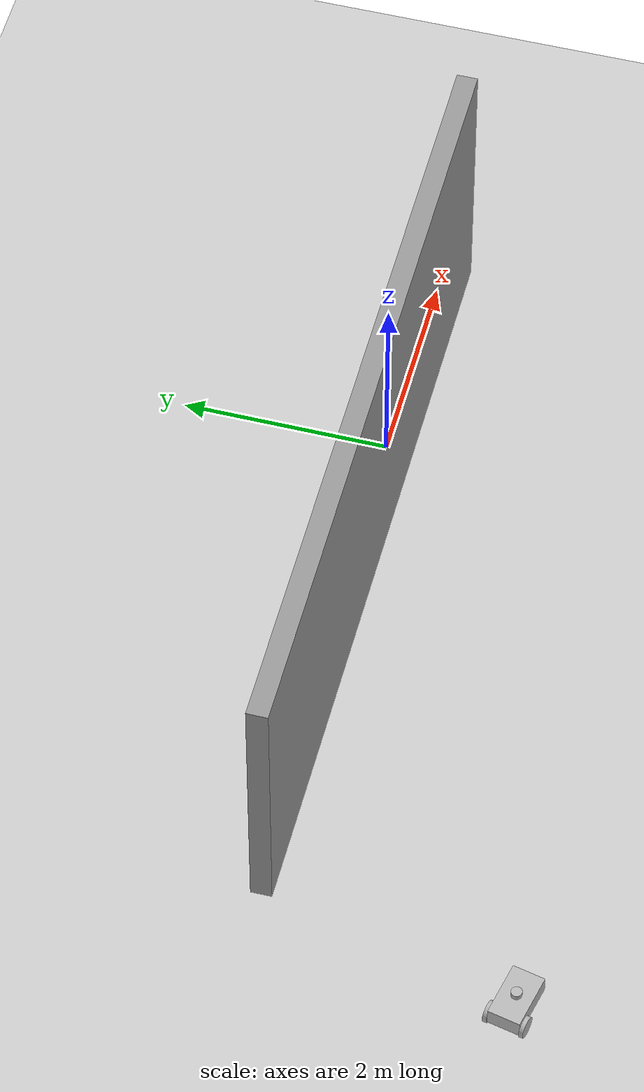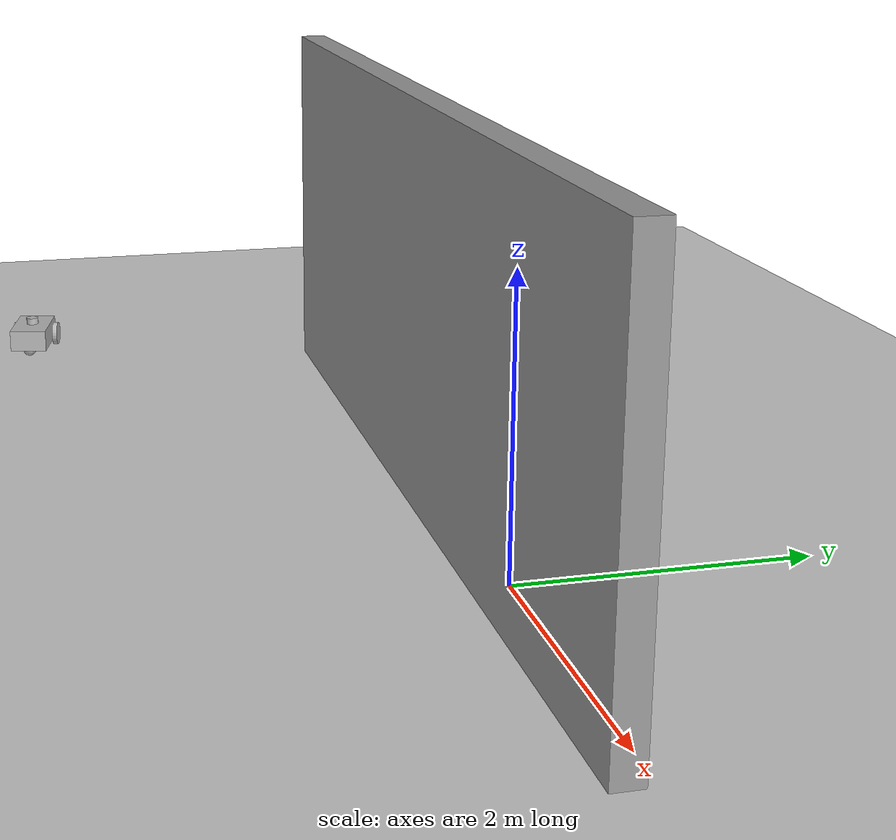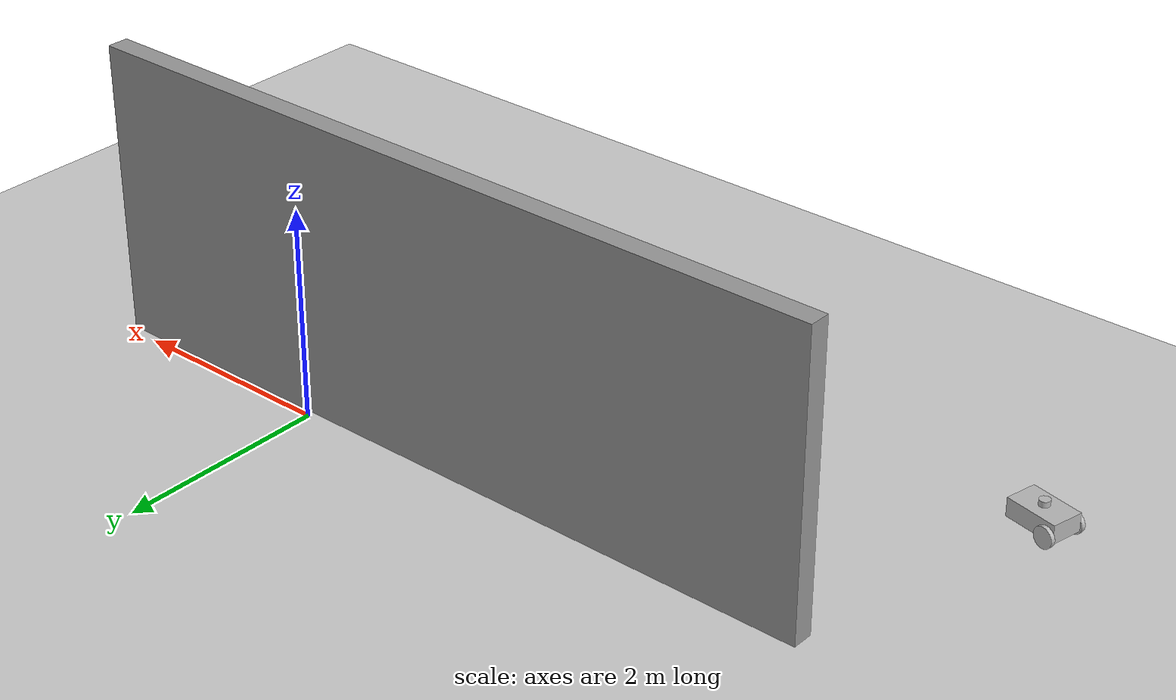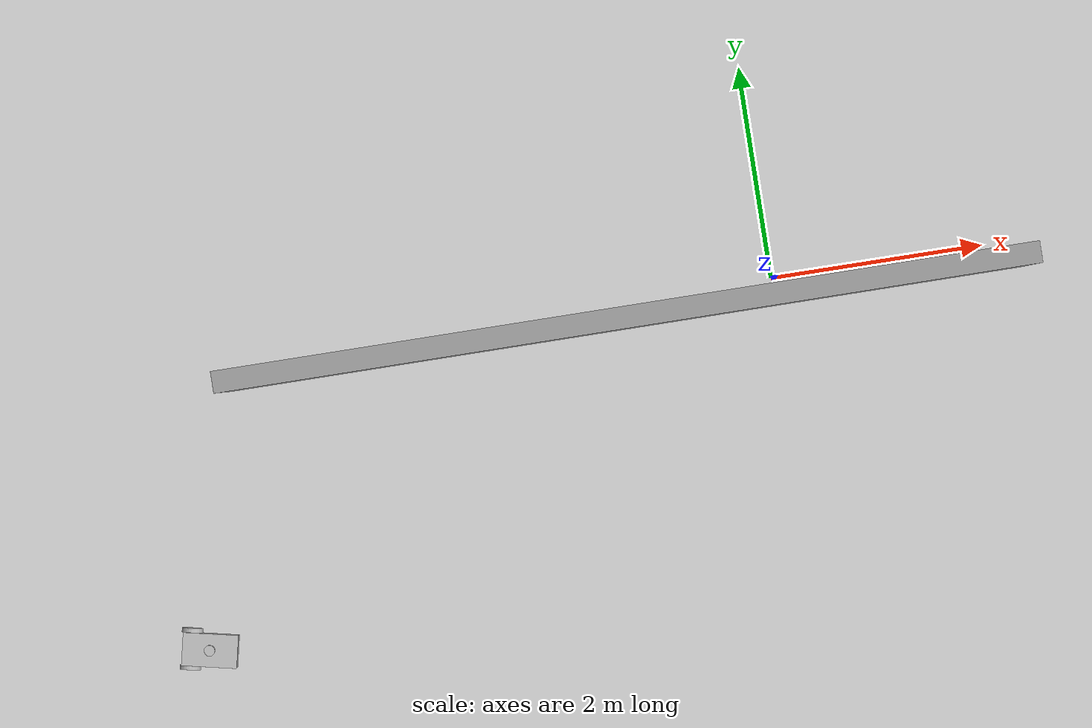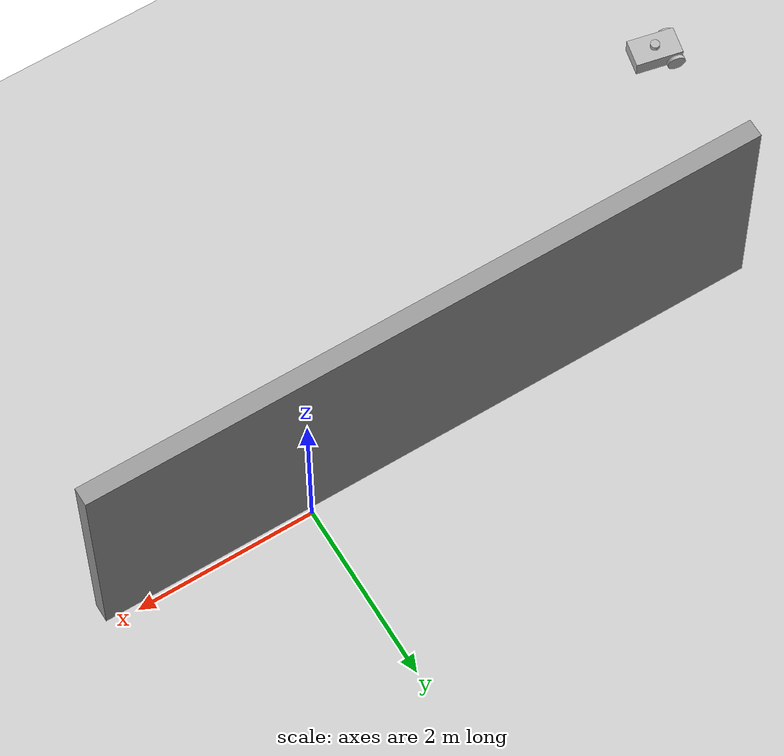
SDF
<sdf version="1.7">
 <world name="default">
  <model name="ground_plane">
   <static>1</static>
   <link name="link">
    <collision name="collision">
     <geometry><plane><normal>0 0 1</normal><size>100 100</size></plane></geometry>
     <surface>
      <contact><collide_bitmask>65535</collide_bitmask></contact>
      <friction><ode><mu>100</mu><mu2>50</mu2></ode></friction>
     </surface>
    </collision>
    <visual name="visual">
     <cast_shadows>0</cast_shadows>
     <geometry><plane><normal>0 0 1</normal><size>100 100</size></plane></geometry>
     <material>
      <script><uri>file://media/materials/scripts/gazebo.material</uri><name>Gazebo/Grey</name></script>
     </material>
    </visual>
   </link>
  </model>
  <light name="sun" type="directional">
   <pose>0 0 10 0 -0 0</pose>
   <diffuse>0.8 0.8 0.8 1</diffuse>
   <specular>0.2 0.2 0.2 1</specular>
   <attenuation>
    <range>1000</range>
    <constant>0.9</constant>
    <linear>0.01</linear>
    <quadratic>0.001</quadratic>
   </attenuation>
   <direction>-0.5 0.1 -0.9</direction>
   <spot><inner_angle>0</inner_angle><outer_angle>0</outer_angle><falloff>0</falloff></spot>
  </light>
  <scene><shadows>0</shadows><ambient>0.4 0.4 0.4 1</ambient><background>0.7 0.7 0.7 1</background></scene>
  <physics type="ode">
   <real_time_update_rate>1000</real_time_update_rate>
   <max_step_size>0.001</max_step_size>
   <real_time_factor>1</real_time_factor>
   <ode>
    <solver>
     <type>quick</type>
     <iters>150</iters>
     <precon_iters>0</precon_iters>
     <sor>1.4</sor>
     <use_dynamic_moi_rescaling>1</use_dynamic_moi_rescaling>
    </solver>
    <constraints>
     <cfm>1e-05</cfm>
     <erp>0.2</erp>
     <contact_max_correcting_vel>2000</contact_max_correcting_vel>
     <contact_surface_layer>0.01</contact_surface_layer>
    </constraints>
   </ode>
  </physics>
  <gravity>0 0 -9.8</gravity>
  <magnetic_field>6e-06 2.3e-05 -4.2e-05</magnetic_field>
  <atmosphere type="adiabatic"/>
  <audio><device>default</device></audio>
  <spherical_coordinates>
   <surface_model>EARTH_WGS84</surface_model>
   <latitude_deg>0</latitude_deg>
   <longitude_deg>0</longitude_deg>
   <elevation>0</elevation>
   <heading_deg>0</heading_deg>
  </spherical_coordinates>
  <model name="mobile_bot">
   <link name="base_footprint">
    <inertial>
     <pose>0.049827 0 0.127301 0 -0 0</pose>
     <mass>7.225</mass>
     <inertia>
      <ixx>0.144501</ixx>
      <ixy>0</ixy>
      <ixz>0.0242284</ixz>
      <iyy>0.217905</iyy>
      <iyz>0</iyz>
      <izz>0.104451</izz>
     </inertia>
    </inertial>
    <collision name="base_footprint_fixed_joint_lump__base_link_collision">
     <pose>0 0 0.15 0 -0 0</pose>
     <geometry><box><size>0.52 0.31 0.18</size></box></geometry>
    </collision>
    <collision name="base_footprint_fixed_joint_lump__front_caster_collision_1">
     <pose>0.18 0 0.06 0 -0 0</pose>
     <geometry><sphere><radius>0.06</radius></sphere></geometry>
     <surface><friction><ode><mu>0</mu><mu2>0</mu2></ode></friction></surface>
    </collision>
    <collision name="base_footprint_fixed_joint_lump__imu_link_collision_2">
     <pose>0 0 0.16 0 -0 0</pose>
     <geometry><box><size>0.1 0.1 0.1</size></box></geometry>
    </collision>
    <collision name="base_footprint_fixed_joint_lump__lidar_link_collision_3">
     <pose>0 0 0.27 0 -0 0</pose>
     <geometry><cylinder><length>0.055</length><radius>0.0508</radius></cylinder></geometry>
    </collision>
    <visual name="base_footprint_fixed_joint_lump__base_link_visual">
     <pose>0 0 0.15 0 -0 0</pose>
     <geometry><box><size>0.52 0.31 0.18</size></box></geometry>
    </visual>
    <visual name="base_footprint_fixed_joint_lump__front_caster_visual_1">
     <pose>0.18 0 0.06 0 -0 0</pose>
     <geometry><sphere><radius>0.06</radius></sphere></geometry>
    </visual>
    <visual name="base_footprint_fixed_joint_lump__imu_link_visual_2">
     <pose>0 0 0.16 0 -0 0</pose>
     <geometry><box><size>0.1 0.1 0.1</size></box></geometry>
    </visual>
    <visual name="base_footprint_fixed_joint_lump__lidar_link_visual_3">
     <pose>0 0 0.27 0 -0 0</pose>
     <geometry><cylinder><length>0.055</length><radius>0.0508</radius></cylinder></geometry>
    </visual>
    <sensor name="imu_sensor" type="imu">
     <plugin name="imu_plugin" filename="libgazebo_ros_imu_sensor.so">
      <ros><remapping>~/out:=imu</remapping></ros>
      <initial_orientation_as_reference>0</initial_orientation_as_reference>
     </plugin>
     <always_on>1</always_on>
     <update_rate>100</update_rate>
     <visualize>1</visualize>
     <imu>
      <angular_velocity>
       <x>
        <noise type="gaussian">
         <mean>0</mean>
         <stddev>0.0002</stddev>
         <bias_mean>7.5e-06</bias_mean>
         <bias_stddev>8e-07</bias_stddev>
        </noise>
       </x>
       <y>
        <noise type="gaussian">
         <mean>0</mean>
         <stddev>0.0002</stddev>
         <bias_mean>7.5e-06</bias_mean>
         <bias_stddev>8e-07</bias_stddev>
        </noise>
       </y>
       <z>
        <noise type="gaussian">
         <mean>0</mean>
         <stddev>0.0002</stddev>
         <bias_mean>7.5e-06</bias_mean>
         <bias_stddev>8e-07</bias_stddev>
        </noise>
       </z>
      </angular_velocity>
      <linear_acceleration>
       <x>
        <noise type="gaussian">
         <mean>0</mean>
         <stddev>0.017</stddev>
         <bias_mean>0.1</bias_mean>
         <bias_stddev>0.001</bias_stddev>
        </noise>
       </x>
       <y>
        <noise type="gaussian">
         <mean>0</mean>
         <stddev>0.017</stddev>
         <bias_mean>0.1</bias_mean>
         <bias_stddev>0.001</bias_stddev>
        </noise>
       </y>
       <z>
        <noise type="gaussian">
         <mean>0</mean>
         <stddev>0.017</stddev>
         <bias_mean>0.1</bias_mean>
         <bias_stddev>0.001</bias_stddev>
        </noise>
       </z>
      </linear_acceleration>
     </imu>
     <pose>0 0 0.16 0 -0 0</pose>
    </sensor>
    <sensor name="lidar" type="ray">
     <always_on>1</always_on>
     <visualize>1</visualize>
     <update_rate>5</update_rate>
     <ray>
      <scan>
       <horizontal>
        <samples>360</samples>
        <resolution>1</resolution>
        <min_angle>0</min_angle>
        <max_angle>6.28</max_angle>
       </horizontal>
       <vertical><samples>1</samples><min_angle>0</min_angle><max_angle>0</max_angle></vertical>
      </scan>
      <range><min>0.12</min><max>12</max><resolution>0.015</resolution></range>
      <noise><type>gaussian</type><mean>0</mean><stddev>0.01</stddev></noise>
     </ray>
     <plugin name="scan" filename="libgazebo_ros_ray_sensor.so">
      <ros><remapping>~/out:=scan</remapping></ros>
      <output_type>sensor_msgs/LaserScan</output_type>
      <frame_name>lidar_link</frame_name>
     </plugin>
     <pose>0 0 0.27 0 -0 0</pose>
    </sensor>
   </link>
   <joint name="drivewhl_l_joint" type="revolute">
    <pose relative_to="base_footprint">-0.18 0.175 0.1 0 -0 0</pose>
    <parent>base_footprint</parent>
    <child>drivewhl_l_link</child>
    <axis>
     <xyz>0 1 0</xyz>
     <limit><lower>-1e+16</lower><upper>1e+16</upper></limit>
     <dynamics><spring_reference>0</spring_reference><spring_stiffness>0</spring_stiffness></dynamics>
    </axis>
   </joint>
   <link name="drivewhl_l_link">
    <pose relative_to="drivewhl_l_joint">0 0 0 0 -0 0</pose>
    <inertial>
     <pose>0 0 0 1.5708 -0 0</pose>
     <mass>2</mass>
     <inertia>
      <ixx>0.00526667</ixx>
      <ixy>0</ixy>
      <ixz>0</ixz>
      <iyy>0.00526667</iyy>
      <iyz>0</iyz>
      <izz>0.01</izz>
     </inertia>
    </inertial>
    <collision name="drivewhl_l_link_collision">
     <pose>0 0 0 1.5708 -0 0</pose>
     <geometry><cylinder><length>0.04</length><radius>0.1</radius></cylinder></geometry>
    </collision>
    <visual name="drivewhl_l_link_visual">
     <pose>0 0 0 1.5708 -0 0</pose>
     <geometry><cylinder><length>0.04</length><radius>0.1</radius></cylinder></geometry>
    </visual>
   </link>
   <joint name="drivewhl_r_joint" type="revolute">
    <pose relative_to="base_footprint">-0.18 -0.175 0.1 0 -0 0</pose>
    <parent>base_footprint</parent>
    <child>drivewhl_r_link</child>
    <axis>
     <xyz>0 1 0</xyz>
     <limit><lower>-1e+16</lower><upper>1e+16</upper></limit>
     <dynamics><spring_reference>0</spring_reference><spring_stiffness>0</spring_stiffness></dynamics>
    </axis>
   </joint>
   <link name="drivewhl_r_link">
    <pose relative_to="drivewhl_r_joint">0 0 0 0 -0 0</pose>
    <inertial>
     <pose>0 0 0 1.5708 -0 0</pose>
     <mass>2</mass>
     <inertia>
      <ixx>0.00526667</ixx>
      <ixy>0</ixy>
      <ixz>0</ixz>
      <iyy>0.00526667</iyy>
      <iyz>0</iyz>
      <izz>0.01</izz>
     </inertia>
    </inertial>
    <collision name="drivewhl_r_link_collision">
     <pose>0 0 0 1.5708 -0 0</pose>
     <geometry><cylinder><length>0.04</length><radius>0.1</radius></cylinder></geometry>
    </collision>
    <visual name="drivewhl_r_link_visual">
     <pose>0 0 0 1.5708 -0 0</pose>
     <geometry><cylinder><length>0.04</length><radius>0.1</radius></cylinder></geometry>
    </visual>
   </link>
   <static>0</static>
   <plugin name="diff_drive" filename="libgazebo_ros_diff_drive.so">
    <update_rate>30</update_rate>
    <left_joint>drivewhl_l_joint</left_joint>
    <right_joint>drivewhl_r_joint</right_joint>
    <wheel_separation>0.35</wheel_separation>
    <wheel_diameter>0.2</wheel_diameter>
    <max_wheel_torque>20</max_wheel_torque>
    <max_wheel_acceleration>1.0</max_wheel_acceleration>
    <command_topic>cmd_vel</command_topic>
    <publish_odom>1</publish_odom>
    <publish_odom_tf>0</publish_odom_tf>
    <publish_wheel_tf>1</publish_wheel_tf>
    <odometry_frame>odom</odometry_frame>
    <robot_base_frame>base_footprint</robot_base_frame>
   </plugin>
   <pose>-5.75521 -2.6267 -1e-06 -7e-06 -5e-06 -0.212161</pose>
  </model>
  <model name="grey_wall">
   <static>1</static>
   <link name="link">
    <pose>0 0 1.4 0 -0 0</pose>
    <collision name="collision"><geometry><box><size>7.5 0.2 2.8</size></box></geometry></collision>
    <visual name="visual">
     <cast_shadows>0</cast_shadows>
     <geometry><box><size>7.5 0.2 2.8</size></box></geometry>
     <material>
      <script>
       <uri>model://grey_wall/materials/scripts</uri>
       <uri>model://grey_wall/materials/textures</uri>
       <name>vrc/grey_wall</name>
      </script>
     </material>
    </visual>
   </link>
   <pose>-1.42209 -0.161065 0 0 -0 0</pose>
  </model>
 </world>
</sdf>
